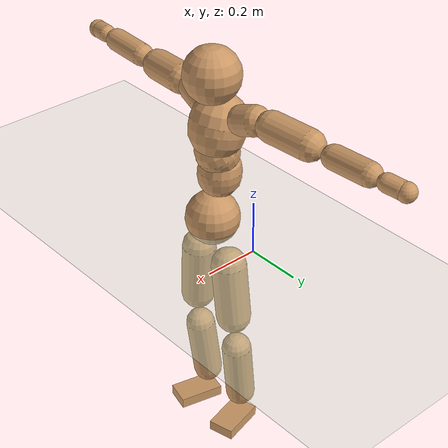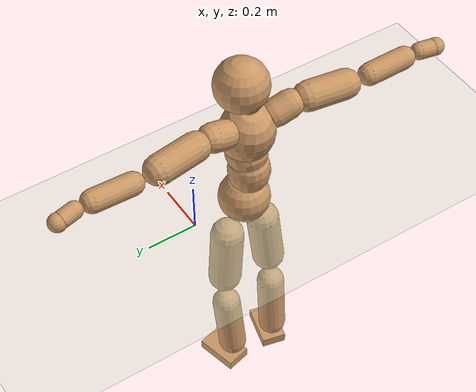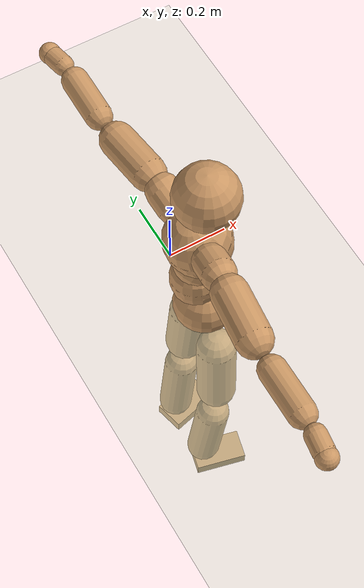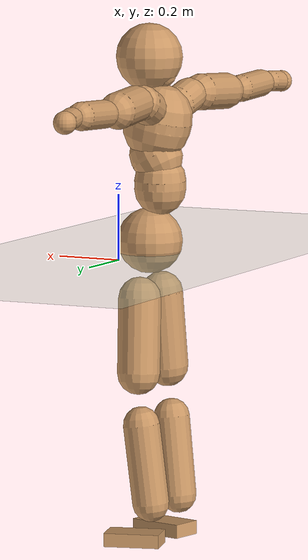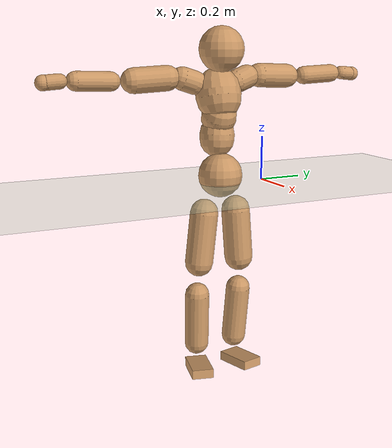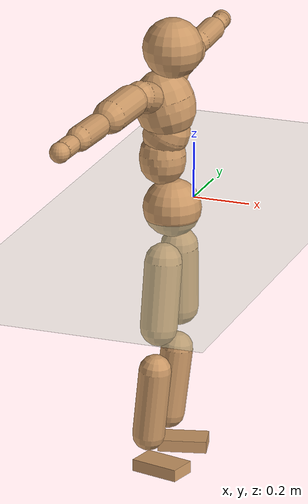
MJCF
<mujoco model="humanoid">
  <compiler coordinate="local"/>
  <default>
    <joint damping="0.0" armature="0.01" stiffness="0.0" limited="true"/>
    <geom conaffinity="1" condim="3" contype="7" margin="0.001" rgba="0.8 0.6 .4 1"/>
  </default>
  <asset>
    <texture type="skybox" builtin="gradient" rgb1=".4 .5 .6" rgb2="0 0 0" width="100" height="100"/>
    <texture builtin="flat" height="1278" mark="cross" markrgb="1 1 1" name="texgeom" random="0.01" rgb1="0.8 0.6 0.4" rgb2="0.8 0.6 0.4" type="cube" width="127"/>
    <texture builtin="checker" height="100" name="texplane" rgb1="0 0 0" rgb2="0.8 0.8 0.8" type="2d" width="100"/>
    <material name="MatPlane" reflectance="0.5" shininess="1" specular="1" texrepeat="60 60" texture="texplane"/>
    <material name="geom" texture="texgeom" texuniform="true"/>
  </asset>
  <worldbody>
    <light cutoff="100" diffuse="1 1 1" dir="-0 0 -1.3" directional="true" exponent="1" pos="0 0 1.3" specular=".1 .1 .1"/>
    <geom conaffinity="1" condim="3" name="floor" pos="0 0 0" rgba="0.8 0.9 0.8 1" size="100 100 .2" type="plane" material="MatPlane"/>
    <body name="Pelvis" pos="-0.0011 -0.2165 0.0361">
      <freejoint name="Pelvis"/>
      <geom type="sphere" contype="1" conaffinity="1" density="500" size="0.1013" pos="0.0000 0.0000 0.0000" name="Pelvis"/>
      <body name="L_Hip" pos="-0.0018 0.0751 -0.0928">
        <joint name="L_Hip_x" type="hinge" pos="0 0 0" axis="1 0 0" stiffness="800" damping="80" armature="0.02" range="-180.0000 180.0000"/>
        <joint name="L_Hip_y" type="hinge" pos="0 0 0" axis="0 1 0" stiffness="800" damping="80" armature="0.02" range="-180.0000 180.0000"/>
        <joint name="L_Hip_z" type="hinge" pos="0 0 0" axis="0 0 1" stiffness="800" damping="80" armature="0.02" range="-180.0000 180.0000"/>
        <geom type="capsule" contype="1" conaffinity="1" density="500" fromto="-0.0019 0.0067 -0.0766 -0.0074 0.0267 -0.3064" size="0.0659" name="L_Hip"/>
        <body name="L_Knee" pos="-0.0093 0.0334 -0.383">
          <joint name="L_Knee_x" type="hinge" pos="0 0 0" axis="1 0 0" stiffness="800" damping="80" armature="0.02" range="-180.0000 180.0000"/>
          <joint name="L_Knee_y" type="hinge" pos="0 0 0" axis="0 1 0" stiffness="800" damping="80" armature="0.02" range="-180.0000 180.0000"/>
          <joint name="L_Knee_z" type="hinge" pos="0 0 0" axis="0 0 1" stiffness="800" damping="80" armature="0.02" range="-180.0000 180.0000"/>
          <geom type="capsule" contype="1" conaffinity="1" density="500" fromto="-0.0093 -0.0026 -0.0816 -0.0373 -0.0103 -0.3264" size="0.0565" name="L_Knee"/>
          <body name="L_Ankle" pos="-0.0466 -0.0128 -0.408">
            <joint name="L_Ankle_x" type="hinge" pos="0 0 0" axis="1 0 0" stiffness="800" damping="80" armature="0.02" range="-180.0000 180.0000"/>
            <joint name="L_Ankle_y" type="hinge" pos="0 0 0" axis="0 1 0" stiffness="800" damping="80" armature="0.02" range="-180.0000 180.0000"/>
            <joint name="L_Ankle_z" type="hinge" pos="0 0 0" axis="0 0 1" stiffness="800" damping="80" armature="0.02" range="-180.0000 180.0000"/>
            <geom type="box" contype="1" conaffinity="1" density="500" pos="0.0598 0.0150 -0.0287" size="0.0859 0.0513 0.021" quat="0.9925 0.0000 0.0000 0.1226" name="L_Ankle"/>
            <body name="L_Toe" pos="0.1197 0.03 -0.0573">
              <joint name="L_Toe_x" type="hinge" pos="0 0 0" axis="1 0 0" stiffness="500" damping="50" armature="0.02" range="-180.0000 180.0000"/>
              <joint name="L_Toe_y" type="hinge" pos="0 0 0" axis="0 1 0" stiffness="500" damping="50" armature="0.02" range="-180.0000 180.0000"/>
              <joint name="L_Toe_z" type="hinge" pos="0 0 0" axis="0 0 1" stiffness="500" damping="50" armature="0.02" range="-180.0000 180.0000"/>
              <geom type="box" contype="1" conaffinity="1" density="500" pos="0.0000 0.0000 0.0281" size="0.001 0.0025 0.001" quat="0.9917 0.0000 0.0000 0.1283" name="L_Toe"/>
            </body>
          </body>
        </body>
      </body>
      <body name="R_Hip" pos="0.0006 -0.0734 -0.0924">
        <joint name="R_Hip_x" type="hinge" pos="0 0 0" axis="1 0 0" stiffness="800" damping="80" armature="0.02" range="-180.0000 180.0000"/>
        <joint name="R_Hip_y" type="hinge" pos="0 0 0" axis="0 1 0" stiffness="800" damping="80" armature="0.02" range="-180.0000 180.0000"/>
        <joint name="R_Hip_z" type="hinge" pos="0 0 0" axis="0 0 1" stiffness="800" damping="80" armature="0.02" range="-180.0000 180.0000"/>
        <geom type="capsule" contype="1" conaffinity="1" density="500" fromto="-0.0027 -0.0076 -0.0779 -0.0108 -0.0304 -0.3115" size="0.0648" name="R_Hip"/>
        <body name="R_Knee" pos="-0.0135 -0.038 -0.3894">
          <joint name="R_Knee_x" type="hinge" pos="0 0 0" axis="1 0 0" stiffness="800" damping="80" armature="0.02" range="-180.0000 180.0000"/>
          <joint name="R_Knee_y" type="hinge" pos="0 0 0" axis="0 1 0" stiffness="800" damping="80" armature="0.02" range="-180.0000 180.0000"/>
          <joint name="R_Knee_z" type="hinge" pos="0 0 0" axis="0 0 1" stiffness="800" damping="80" armature="0.02" range="-180.0000 180.0000"/>
          <geom type="capsule" contype="1" conaffinity="1" density="500" fromto="-0.0091 0.0030 -0.0819 -0.0365 0.0118 -0.3274" size="0.0564" name="R_Knee"/>
          <body name="R_Ankle" pos="-0.0456 0.0148 -0.4093">
            <joint name="R_Ankle_x" type="hinge" pos="0 0 0" axis="1 0 0" stiffness="800" damping="80" armature="0.02" range="-180.0000 180.0000"/>
            <joint name="R_Ankle_y" type="hinge" pos="0 0 0" axis="0 1 0" stiffness="800" damping="80" armature="0.02" range="-180.0000 180.0000"/>
            <joint name="R_Ankle_z" type="hinge" pos="0 0 0" axis="0 0 1" stiffness="800" damping="80" armature="0.02" range="-180.0000 180.0000"/>
            <geom type="box" contype="1" conaffinity="1" density="500" pos="0.0620 -0.0149 -0.0249" size="0.0871 0.0498 0.0214" quat="0.9930 0.0000 0.0000 -0.1177" name="R_Ankle"/>
            <body name="R_Toe" pos="0.1239 -0.0298 -0.0499">
              <joint name="R_Toe_x" type="hinge" pos="0 0 0" axis="1 0 0" stiffness="500" damping="50" armature="0.02" range="-180.0000 180.0000"/>
              <joint name="R_Toe_y" type="hinge" pos="0 0 0" axis="0 1 0" stiffness="500" damping="50" armature="0.02" range="-180.0000 180.0000"/>
              <joint name="R_Toe_z" type="hinge" pos="0 0 0" axis="0 0 1" stiffness="500" damping="50" armature="0.02" range="-180.0000 180.0000"/>
              <geom type="box" contype="1" conaffinity="1" density="500" pos="0.0000 0.0000 0.0255" size="0.001 0.0025 0.0011" quat="0.9941 0.0000 0.0000 -0.1084" name="R_Toe"/>
            </body>
          </body>
        </body>
      </body>
      <body name="Torso" pos="-0.0335 -0.0023 0.1108">
        <joint name="Torso_x" type="hinge" pos="0 0 0" axis="1 0 0" stiffness="1000" damping="100" armature="0.02" range="-180.0000 180.0000"/>
        <joint name="Torso_y" type="hinge" pos="0 0 0" axis="0 1 0" stiffness="1000" damping="100" armature="0.02" range="-180.0000 180.0000"/>
        <joint name="Torso_z" type="hinge" pos="0 0 0" axis="0 0 1" stiffness="1000" damping="100" armature="0.02" range="-180.0000 180.0000"/>
        <geom type="capsule" contype="1" conaffinity="1" density="500" fromto="-0.0014 0.0029 0.0759 -0.0009 0.0019 0.0506" size="0.0803" name="Torso"/>
        <body name="Spine" pos="-0.0023 0.0048 0.1265">
          <joint name="Spine_x" type="hinge" pos="0 0 0" axis="1 0 0" stiffness="1000" damping="100" armature="0.02" range="-180.0000 180.0000"/>
          <joint name="Spine_y" type="hinge" pos="0 0 0" axis="0 1 0" stiffness="1000" damping="100" armature="0.02" range="-180.0000 180.0000"/>
          <joint name="Spine_z" type="hinge" pos="0 0 0" axis="0 0 1" stiffness="1000" damping="100" armature="0.02" range="-180.0000 180.0000"/>
          <geom type="capsule" contype="1" conaffinity="1" density="500" fromto="0.0168 0.0007 0.0309 0.0112 0.0005 0.0206" size="0.08" name="Spine"/>
          <body name="Chest" pos="0.028 0.0012 0.0516">
            <joint name="Chest_x" type="hinge" pos="0 0 0" axis="1 0 0" stiffness="1000" damping="100" armature="0.02" range="-180.0000 180.0000"/>
            <joint name="Chest_y" type="hinge" pos="0 0 0" axis="0 1 0" stiffness="1000" damping="100" armature="0.02" range="-180.0000 180.0000"/>
            <joint name="Chest_z" type="hinge" pos="0 0 0" axis="0 0 1" stiffness="1000" damping="100" armature="0.02" range="-180.0000 180.0000"/>
            <geom type="capsule" contype="1" conaffinity="1" density="500" fromto="-0.0240 -0.0010 0.0921 -0.0160 -0.0007 0.0614" size="0.104" name="Chest"/>
            <body name="Neck" pos="-0.0442 -0.0021 0.215">
              <joint name="Neck_x" type="hinge" pos="0 0 0" axis="1 0 0" stiffness="500" damping="50" armature="0.02" range="-180.0000 180.0000"/>
              <joint name="Neck_y" type="hinge" pos="0 0 0" axis="0 1 0" stiffness="500" damping="50" armature="0.02" range="-180.0000 180.0000"/>
              <joint name="Neck_z" type="hinge" pos="0 0 0" axis="0 0 1" stiffness="500" damping="50" armature="0.02" range="-180.0000 180.0000"/>
              <geom type="capsule" contype="1" conaffinity="1" density="500" fromto="0.0103 0.0008 0.0124 0.0410 0.0031 0.0496" size="0.0448" name="Neck"/>
              <body name="Head" pos="0.0513 0.0039 0.062">
                <joint name="Head_x" type="hinge" pos="0 0 0" axis="1 0 0" stiffness="500" damping="50" armature="0.02" range="-180.0000 180.0000"/>
                <joint name="Head_y" type="hinge" pos="0 0 0" axis="0 1 0" stiffness="500" damping="50" armature="0.02" range="-180.0000 180.0000"/>
                <joint name="Head_z" type="hinge" pos="0 0 0" axis="0 0 1" stiffness="500" damping="50" armature="0.02" range="-180.0000 180.0000"/>
                <geom type="sphere" contype="1" conaffinity="1" density="500" size="0.1032" pos="0.0000 0.0000 0.0000" name="Head"/>
              </body>
            </body>
            <body name="L_Thorax" pos="-0.0354 0.0826 0.1239">
              <joint name="L_Thorax_x" type="hinge" pos="0 0 0" axis="1 0 0" stiffness="500" damping="50" armature="0.02" range="-180.0000 180.0000"/>
              <joint name="L_Thorax_y" type="hinge" pos="0 0 0" axis="0 1 0" stiffness="500" damping="50" armature="0.02" range="-180.0000 180.0000"/>
              <joint name="L_Thorax_z" type="hinge" pos="0 0 0" axis="0 0 1" stiffness="500" damping="50" armature="0.02" range="-180.0000 180.0000"/>
              <geom type="capsule" contype="1" conaffinity="1" density="500" fromto="-0.0023 0.0185 0.0063 -0.0092 0.0741 0.0252" size="0.0548" name="L_Thorax"/>
              <body name="L_Shoulder" pos="-0.0115 0.0926 0.0315">
                <joint name="L_Shoulder_x" type="hinge" pos="0 0 0" axis="1 0 0" stiffness="500" damping="50" armature="0.02" range="-720.0000 720.0000"/>
                <joint name="L_Shoulder_y" type="hinge" pos="0 0 0" axis="0 1 0" stiffness="500" damping="50" armature="0.02" range="-720.0000 720.0000"/>
                <joint name="L_Shoulder_z" type="hinge" pos="0 0 0" axis="0 0 1" stiffness="500" damping="50" armature="0.02" range="-720.0000 720.0000"/>
                <geom type="capsule" contype="1" conaffinity="1" density="500" fromto="-0.0060 0.0522 -0.0024 -0.0240 0.2086 -0.0097" size="0.0559" name="L_Shoulder"/>
                <body name="L_Elbow" pos="-0.03 0.2608 -0.0122">
                  <joint name="L_Elbow_x" type="hinge" pos="0 0 0" axis="1 0 0" stiffness="500" damping="50" armature="0.02" range="-720.0000 720.0000"/>
                  <joint name="L_Elbow_y" type="hinge" pos="0 0 0" axis="0 1 0" stiffness="500" damping="50" armature="0.02" range="-720.0000 720.0000"/>
                  <joint name="L_Elbow_z" type="hinge" pos="0 0 0" axis="0 0 1" stiffness="500" damping="50" armature="0.02" range="-720.0000 720.0000"/>
                  <geom type="capsule" contype="1" conaffinity="1" density="500" fromto="-0.0001 0.0503 0.0020 -0.0003 0.2011 0.0080" size="0.0427" name="L_Elbow"/>
                  <body name="L_Wrist" pos="-0.0004 0.2514 0.0101">
                    <joint name="L_Wrist_x" type="hinge" pos="0 0 0" axis="1 0 0" stiffness="300" damping="30" armature="0.02" range="-180.0000 180.0000"/>
                    <joint name="L_Wrist_y" type="hinge" pos="0 0 0" axis="0 1 0" stiffness="300" damping="30" armature="0.02" range="-180.0000 180.0000"/>
                    <joint name="L_Wrist_z" type="hinge" pos="0 0 0" axis="0 0 1" stiffness="300" damping="30" armature="0.02" range="-180.0000 180.0000"/>
                    <geom type="capsule" contype="1" conaffinity="1" density="500" fromto="-0.0030 0.0171 -0.0016 -0.0121 0.0682 -0.0066" size="0.0325" name="L_Wrist"/>
                    <body name="L_Hand" pos="-0.0151 0.0853 -0.0082">
                      <joint name="L_Hand_x" type="hinge" pos="0 0 0" axis="1 0 0" stiffness="300" damping="30" armature="0.02" range="-180.0000 180.0000"/>
                      <joint name="L_Hand_y" type="hinge" pos="0 0 0" axis="0 1 0" stiffness="300" damping="30" armature="0.02" range="-180.0000 180.0000"/>
                      <joint name="L_Hand_z" type="hinge" pos="0 0 0" axis="0 0 1" stiffness="300" damping="30" armature="0.02" range="-180.0000 180.0000"/>
                      <geom type="sphere" contype="1" conaffinity="1" density="500" size="0.0342" pos="0.0000 0.0000 0.0000" name="L_Hand"/>
                    </body>
                  </body>
                </body>
              </body>
            </body>
            <body name="R_Thorax" pos="-0.0402 -0.0854 0.1215">
              <joint name="R_Thorax_x" type="hinge" pos="0 0 0" axis="1 0 0" stiffness="500" damping="50" armature="0.02" range="-180.0000 180.0000"/>
              <joint name="R_Thorax_y" type="hinge" pos="0 0 0" axis="0 1 0" stiffness="500" damping="50" armature="0.02" range="-180.0000 180.0000"/>
              <joint name="R_Thorax_z" type="hinge" pos="0 0 0" axis="0 0 1" stiffness="500" damping="50" armature="0.02" range="-180.0000 180.0000"/>
              <geom type="capsule" contype="1" conaffinity="1" density="500" fromto="-0.0021 -0.0195 0.0067 -0.0086 -0.0781 0.0267" size="0.0539" name="R_Thorax"/>
              <body name="R_Shoulder" pos="-0.0107 -0.0977 0.0334">
                <joint name="R_Shoulder_x" type="hinge" pos="0 0 0" axis="1 0 0" stiffness="500" damping="50" armature="0.02" range="-720.0000 720.0000"/>
                <joint name="R_Shoulder_y" type="hinge" pos="0 0 0" axis="0 1 0" stiffness="500" damping="50" armature="0.02" range="-720.0000 720.0000"/>
                <joint name="R_Shoulder_z" type="hinge" pos="0 0 0" axis="0 0 1" stiffness="500" damping="50" armature="0.02" range="-720.0000 720.0000"/>
                <geom type="capsule" contype="1" conaffinity="1" density="500" fromto="-0.0049 -0.0511 -0.0026 -0.0197 -0.2046 -0.0105" size="0.0572" name="R_Shoulder"/>
                <body name="R_Elbow" pos="-0.0246 -0.2557 -0.0131">
                  <joint name="R_Elbow_x" type="hinge" pos="0 0 0" axis="1 0 0" stiffness="500" damping="50" armature="0.02" range="-720.0000 720.0000"/>
                  <joint name="R_Elbow_y" type="hinge" pos="0 0 0" axis="0 1 0" stiffness="500" damping="50" armature="0.02" range="-720.0000 720.0000"/>
                  <joint name="R_Elbow_z" type="hinge" pos="0 0 0" axis="0 0 1" stiffness="500" damping="50" armature="0.02" range="-720.0000 720.0000"/>
                  <geom type="capsule" contype="1" conaffinity="1" density="500" fromto="-0.0008 -0.0515 0.0020 -0.0030 -0.2059 0.0079" size="0.0431" name="R_Elbow"/>
                  <body name="R_Wrist" pos="-0.0038 -0.2574 0.0099">
                    <joint name="R_Wrist_x" type="hinge" pos="0 0 0" axis="1 0 0" stiffness="300" damping="30" armature="0.02" range="-180.0000 180.0000"/>
                    <joint name="R_Wrist_y" type="hinge" pos="0 0 0" axis="0 1 0" stiffness="300" damping="30" armature="0.02" range="-180.0000 180.0000"/>
                    <joint name="R_Wrist_z" type="hinge" pos="0 0 0" axis="0 0 1" stiffness="300" damping="30" armature="0.02" range="-180.0000 180.0000"/>
                    <geom type="capsule" contype="1" conaffinity="1" density="500" fromto="-0.0021 -0.0172 -0.0012 -0.0085 -0.0686 -0.0050" size="0.0333" name="R_Wrist"/>
                    <body name="R_Hand" pos="-0.0106 -0.0858 -0.0062">
                      <joint name="R_Hand_x" type="hinge" pos="0 0 0" axis="1 0 0" stiffness="300" damping="30" armature="0.02" range="-180.0000 180.0000"/>
                      <joint name="R_Hand_y" type="hinge" pos="0 0 0" axis="0 1 0" stiffness="300" damping="30" armature="0.02" range="-180.0000 180.0000"/>
                      <joint name="R_Hand_z" type="hinge" pos="0 0 0" axis="0 0 1" stiffness="300" damping="30" armature="0.02" range="-180.0000 180.0000"/>
                      <geom type="sphere" contype="1" conaffinity="1" density="500" size="0.0345" pos="0.0000 0.0000 0.0000" name="R_Hand"/>
                    </body>
                  </body>
                </body>
              </body>
            </body>
          </body>
        </body>
      </body>
    </body>
  </worldbody>
  <actuator>
    <motor name="L_Hip_x" joint="L_Hip_x" gear="500"/>
    <motor name="L_Hip_y" joint="L_Hip_y" gear="500"/>
    <motor name="L_Hip_z" joint="L_Hip_z" gear="500"/>
    <motor name="L_Knee_x" joint="L_Knee_x" gear="500"/>
    <motor name="L_Knee_y" joint="L_Knee_y" gear="500"/>
    <motor name="L_Knee_z" joint="L_Knee_z" gear="500"/>
    <motor name="L_Ankle_x" joint="L_Ankle_x" gear="500"/>
    <motor name="L_Ankle_y" joint="L_Ankle_y" gear="500"/>
    <motor name="L_Ankle_z" joint="L_Ankle_z" gear="500"/>
    <motor name="L_Toe_x" joint="L_Toe_x" gear="500"/>
    <motor name="L_Toe_y" joint="L_Toe_y" gear="500"/>
    <motor name="L_Toe_z" joint="L_Toe_z" gear="500"/>
    <motor name="R_Hip_x" joint="R_Hip_x" gear="500"/>
    <motor name="R_Hip_y" joint="R_Hip_y" gear="500"/>
    <motor name="R_Hip_z" joint="R_Hip_z" gear="500"/>
    <motor name="R_Knee_x" joint="R_Knee_x" gear="500"/>
    <motor name="R_Knee_y" joint="R_Knee_y" gear="500"/>
    <motor name="R_Knee_z" joint="R_Knee_z" gear="500"/>
    <motor name="R_Ankle_x" joint="R_Ankle_x" gear="500"/>
    <motor name="R_Ankle_y" joint="R_Ankle_y" gear="500"/>
    <motor name="R_Ankle_z" joint="R_Ankle_z" gear="500"/>
    <motor name="R_Toe_x" joint="R_Toe_x" gear="500"/>
    <motor name="R_Toe_y" joint="R_Toe_y" gear="500"/>
    <motor name="R_Toe_z" joint="R_Toe_z" gear="500"/>
    <motor name="Torso_x" joint="Torso_x" gear="500"/>
    <motor name="Torso_y" joint="Torso_y" gear="500"/>
    <motor name="Torso_z" joint="Torso_z" gear="500"/>
    <motor name="Spine_x" joint="Spine_x" gear="500"/>
    <motor name="Spine_y" joint="Spine_y" gear="500"/>
    <motor name="Spine_z" joint="Spine_z" gear="500"/>
    <motor name="Chest_x" joint="Chest_x" gear="500"/>
    <motor name="Chest_y" joint="Chest_y" gear="500"/>
    <motor name="Chest_z" joint="Chest_z" gear="500"/>
    <motor name="Neck_x" joint="Neck_x" gear="500"/>
    <motor name="Neck_y" joint="Neck_y" gear="500"/>
    <motor name="Neck_z" joint="Neck_z" gear="500"/>
    <motor name="Head_x" joint="Head_x" gear="500"/>
    <motor name="Head_y" joint="Head_y" gear="500"/>
    <motor name="Head_z" joint="Head_z" gear="500"/>
    <motor name="L_Thorax_x" joint="L_Thorax_x" gear="500"/>
    <motor name="L_Thorax_y" joint="L_Thorax_y" gear="500"/>
    <motor name="L_Thorax_z" joint="L_Thorax_z" gear="500"/>
    <motor name="L_Shoulder_x" joint="L_Shoulder_x" gear="500"/>
    <motor name="L_Shoulder_y" joint="L_Shoulder_y" gear="500"/>
    <motor name="L_Shoulder_z" joint="L_Shoulder_z" gear="500"/>
    <motor name="L_Elbow_x" joint="L_Elbow_x" gear="500"/>
    <motor name="L_Elbow_y" joint="L_Elbow_y" gear="500"/>
    <motor name="L_Elbow_z" joint="L_Elbow_z" gear="500"/>
    <motor name="L_Wrist_x" joint="L_Wrist_x" gear="500"/>
    <motor name="L_Wrist_y" joint="L_Wrist_y" gear="500"/>
    <motor name="L_Wrist_z" joint="L_Wrist_z" gear="500"/>
    <motor name="L_Hand_x" joint="L_Hand_x" gear="500"/>
    <motor name="L_Hand_y" joint="L_Hand_y" gear="500"/>
    <motor name="L_Hand_z" joint="L_Hand_z" gear="500"/>
    <motor name="R_Thorax_x" joint="R_Thorax_x" gear="500"/>
    <motor name="R_Thorax_y" joint="R_Thorax_y" gear="500"/>
    <motor name="R_Thorax_z" joint="R_Thorax_z" gear="500"/>
    <motor name="R_Shoulder_x" joint="R_Shoulder_x" gear="500"/>
    <motor name="R_Shoulder_y" joint="R_Shoulder_y" gear="500"/>
    <motor name="R_Shoulder_z" joint="R_Shoulder_z" gear="500"/>
    <motor name="R_Elbow_x" joint="R_Elbow_x" gear="500"/>
    <motor name="R_Elbow_y" joint="R_Elbow_y" gear="500"/>
    <motor name="R_Elbow_z" joint="R_Elbow_z" gear="500"/>
    <motor name="R_Wrist_x" joint="R_Wrist_x" gear="500"/>
    <motor name="R_Wrist_y" joint="R_Wrist_y" gear="500"/>
    <motor name="R_Wrist_z" joint="R_Wrist_z" gear="500"/>
    <motor name="R_Hand_x" joint="R_Hand_x" gear="500"/>
    <motor name="R_Hand_y" joint="R_Hand_y" gear="500"/>
    <motor name="R_Hand_z" joint="R_Hand_z" gear="500"/>
  </actuator>
  <contact>
    <exclude body1="Torso" body2="Chest"/>
    <exclude body1="Head" body2="Chest"/>
    <exclude body1="R_Knee" body2="R_Toe"/>
    <exclude body1="R_Knee" body2="L_Ankle"/>
    <exclude body1="R_Knee" body2="L_Toe"/>
    <exclude body1="L_Knee" body2="L_Toe"/>
    <exclude body1="L_Knee" body2="R_Ankle"/>
    <exclude body1="L_Knee" body2="R_Toe"/>
    <exclude body1="L_Shoulder" body2="Chest"/>
    <exclude body1="R_Shoulder" body2="Chest"/>
  </contact>
  <sensor/>
  <size njmax="700" nconmax="700"/>
</mujoco>
